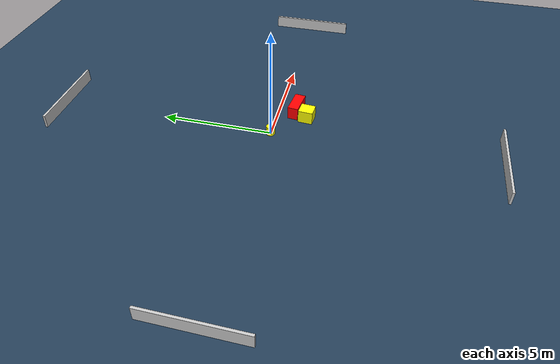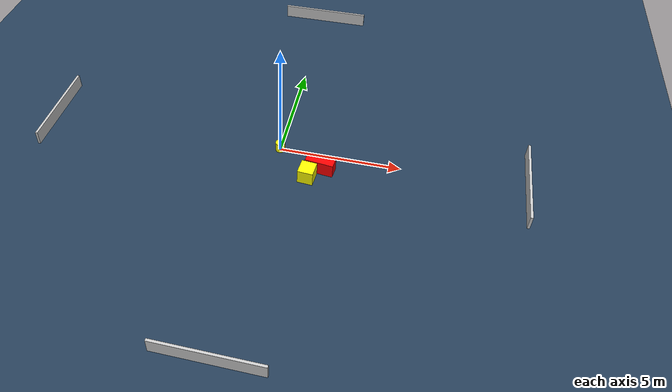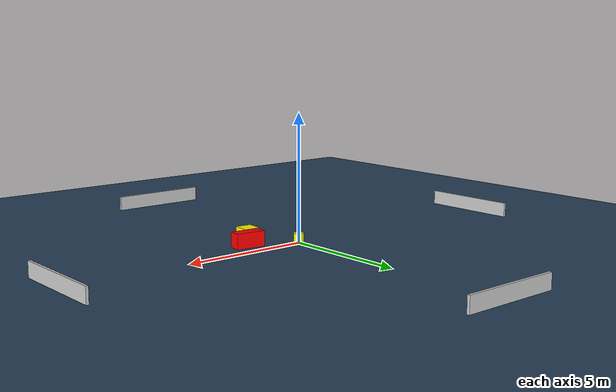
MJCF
<?xml version="1.0" ?>
<mujoco model="generated_environment">
  <option timestep="0.01" integrator="RK4" cone="elliptic"/>
  <default>
    <geom density="1"/>
  </default>
  <asset>
    <texture builtin="gradient" height="3072" name="skybox" rgb1="0.3 0.5 0.7" rgb2="0 0 0" type="skybox" width="512"/>
    <texture builtin="checker" height="300" name="groundplane" rgb1="0.2 0.3 0.4" rgb2="0.1 0.2 0.3" type="2d" width="300"/>
    <material name="groundplane" reflectance="0.2" texrepeat="5 5" texture="groundplane"/>
  </asset>
  <worldbody>
    <light dir="0 0 -1" directional="true" pos="0 0 1.5"/>
    <geom condim="3" friction="0.5 0.005 0.001" material="groundplane" name="floor" pos="0 0 0" size="0 0 0.05" type="plane"/>
    <body name="walls">
      <geom name="wall_1" condim="4" pos="-10.0 0.0 0.3" rgba="0.800000011920929 0.800000011920929 0.800000011920929 1.0" size="0.05 2.0 0.3" type="box"/>
      <geom name="wall_2" condim="4" pos="10.0 0.0 0.3" rgba="0.800000011920929 0.800000011920929 0.800000011920929 1.0" size="0.05 2.0 0.3" type="box"/>
      <geom name="wall_3" condim="4" pos="0.0 -10.0 0.3" rgba="0.800000011920929 0.800000011920929 0.800000011920929 1.0" size="2.0 0.05 0.3" type="box"/>
      <geom name="wall_4" condim="4" pos="0.0 10.0 0.3" rgba="0.800000011920929 0.800000011920929 0.800000011920929 1.0" size="2.0 0.05 0.3" type="box"/>
    </body>
    <body name="robot">
      <joint name="joint_x" type="slide" pos="0 0 0" axis="1 0 0"/>
      <joint name="joint_y" type="slide" pos="0 0 0" axis="0 1 0"/>
      <geom name="robot" type="cylinder" pos="0.0 0.0 0.2" size="0.2 0.2 0.0" mass="5.0" friction="1.0 0.005 0.0001" condim="4" rgba="1.0 1.0 0.0 1.0"/>
    </body>
    <body name="obstacle_1_movable">
      <geom name="obstacle_1_movable" condim="4" pos="1.4117768994616693 -1.3575828016773013 0.3" euler="0 0 85.12130087108706" friction="0.0 0.005 0.001" rgba="1.0 1.0 0.0 1.0" size="0.3331888478010509 0.3164577680389513 0.3" type="box" mass="0.1"/>
      <joint type="free"/>
    </body>
    <body name="obstacle_2_static">
      <geom name="obstacle_2_static" condim="4" pos="1.8372083903687726 -0.7879623762765587 0.3" euler="0 0 173.20677498246002" friction="0.0 0.005 0.001" rgba="1.0 0.0 0.0 1.0" size="0.581833754935333 0.2415253137196534 0.3" type="box"/>
    </body>
  </worldbody>
  <actuator>
    <motor name="actuator_x" joint="joint_x" gear="1" ctrlrange="-1 1"/>
    <motor name="actuator_y" joint="joint_y" gear="1" ctrlrange="-1 1"/>
  </actuator>
</mujoco>
